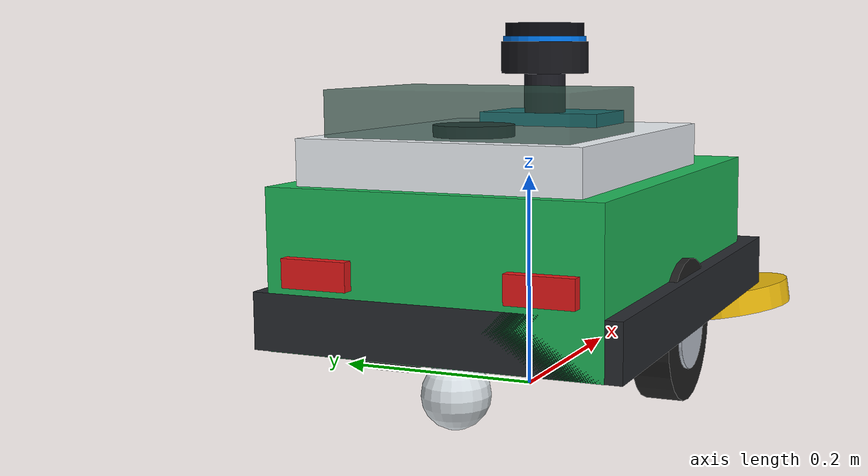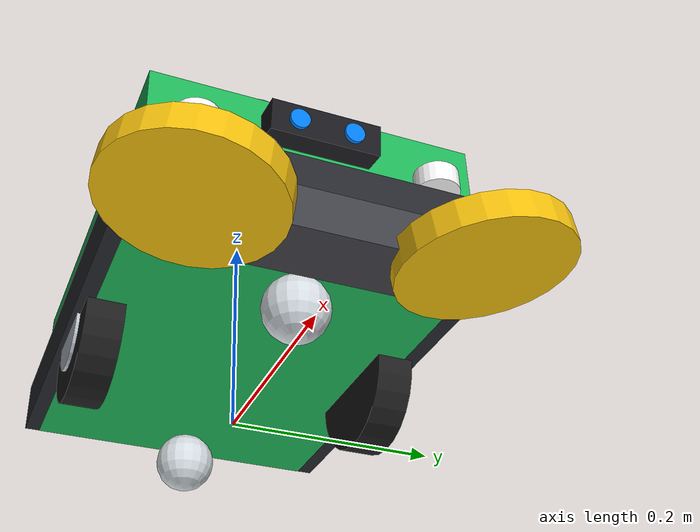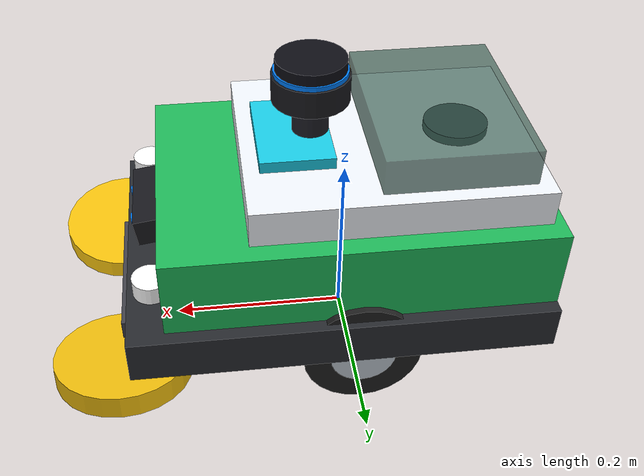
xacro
<?xml version="1.0"?>
<robot xmlns:xacro="http://www.ros.org/wiki/xacro" name="cleaner_robot">

  <!-- Dimensions & Physical Parameters                                 -->
  <xacro:property name="chassis_length" value="0.42"/>
  <xacro:property name="chassis_width" value="0.30"/>
  <xacro:property name="chassis_height" value="0.14"/>
  <xacro:property name="chassis_mass" value="6.0"/>

  <xacro:property name="wheel_radius" value="0.065"/>
  <xacro:property name="wheel_width" value="0.035"/>
  <xacro:property name="wheel_separation" value="0.28"/>
  <xacro:property name="wheel_mass" value="0.5"/>

  <xacro:property name="caster_radius" value="0.03"/>
  <xacro:property name="caster_mass" value="0.25"/>

  <!-- Inertia Macros -->
  <xacro:macro name="cylinder_inertia" params="m r h">
    <inertial>
      <mass value="${m}"/>
      <inertia ixx="${(m/12)*(3*r*r + h*h)}" ixy="0" ixz="0"
               iyy="${(m/12)*(3*r*r + h*h)}" iyz="0"
               izz="${(m/2)*(r*r)}"/>
    </inertial>
  </xacro:macro>

  <xacro:macro name="box_inertia" params="m x y z">
    <inertial>
      <mass value="${m}"/>
      <inertia ixx="${(m/12)*(y*y + z*z)}" ixy="0" ixz="0"
               iyy="${(m/12)*(x*x + z*z)}" iyz="0"
               izz="${(m/12)*(x*x + y*y)}"/>
    </inertial>
  </xacro:macro>

  <xacro:macro name="sphere_inertia" params="m r">
    <inertial>
      <mass value="${m}"/>
      <inertia ixx="${(2/5)*m*r*r}" ixy="0" ixz="0"
               iyy="${(2/5)*m*r*r}" iyz="0"
               izz="${(2/5)*m*r*r}"/>
    </inertial>
  </xacro:macro>

  <!-- Base Footprint (Ground Projection)                               -->
  <link name="base_footprint"/>

  <joint name="base_footprint_joint" type="fixed">
    <parent link="base_footprint"/>
    <child link="base_link"/>
    <origin xyz="0 0 ${wheel_radius}" rpy="0 0 0"/>
  </joint>

  <!-- Main Cleaner Robot Chassis                                       -->
  <link name="base_link">
    <!-- Main Sweeper Body (High-visibility Emerald / Municipal Green) -->
    <visual>
      <origin xyz="0 0 ${chassis_height/2}" rpy="0 0 0"/>
      <geometry>
        <box size="${chassis_length} ${chassis_width} ${chassis_height}"/>
      </geometry>
      <material name="municipal_green">
        <color rgba="0.12 0.72 0.35 1.0"/>
      </material>
    </visual>
    <collision>
      <origin xyz="0 0 ${chassis_height/2}" rpy="0 0 0"/>
      <geometry>
        <box size="${chassis_length} ${chassis_width} ${chassis_height}"/>
      </geometry>
    </collision>

    <!-- Lower Bumper & Brush Skirt (Carbon Dark Grey) -->
    <visual>
      <origin xyz="0.02 0 ${chassis_height*0.18}" rpy="0 0 0"/>
      <geometry>
        <box size="${chassis_length + 0.04} ${chassis_width + 0.03} 0.05"/>
      </geometry>
      <material name="bumper_grey">
        <color rgba="0.15 0.16 0.18 1.0"/>
      </material>
    </visual>
    <collision>
      <origin xyz="0.02 0 ${chassis_height*0.18}" rpy="0 0 0"/>
      <geometry>
        <box size="${chassis_length + 0.04} ${chassis_width + 0.03} 0.05"/>
      </geometry>
    </collision>

    <!-- Aerodynamic Top Cowl (Gloss Pearl White) -->
    <visual>
      <origin xyz="-0.04 0 ${chassis_height + 0.02}" rpy="0 0 0"/>
      <geometry>
        <box size="${chassis_length*0.75} ${chassis_width*0.85} 0.04"/>
      </geometry>
      <material name="pearl_white">
        <color rgba="0.94 0.96 0.98 1.0"/>
      </material>
    </visual>

    <!-- Transparent Waste Hopper / Dustbin (Smoky Tinted Acrylic) -->
    <visual>
      <origin xyz="-0.10 0 ${chassis_height + 0.055}" rpy="0 0 0"/>
      <geometry>
        <box size="0.16 0.22 0.05"/>
      </geometry>
      <material name="tinted_acrylic">
        <color rgba="0.2 0.35 0.3 0.7"/>
      </material>
    </visual>

    <!-- Central Front Suction Intake Mouth -->
    <visual>
      <origin xyz="${chassis_length/2 + 0.02} 0 -0.01" rpy="0 0 0"/>
      <geometry>
        <box size="0.06 0.18 0.04"/>
      </geometry>
      <material name="intake_metal">
        <color rgba="0.25 0.25 0.28 1.0"/>
      </material>
    </visual>

    <!-- Front Left Rotating Disc Sweeper Brush Visual -->
    <visual>
      <origin xyz="${chassis_length/2 + 0.05} 0.12 -0.02" rpy="0.15 0 0"/>
      <geometry>
        <cylinder radius="0.075" length="0.025"/>
      </geometry>
      <material name="brush_yellow">
        <color rgba="0.95 0.75 0.05 1.0"/>
      </material>
    </visual>

    <!-- Front Right Rotating Disc Sweeper Brush Visual -->
    <visual>
      <origin xyz="${chassis_length/2 + 0.05} -0.12 -0.02" rpy="-0.15 0 0"/>
      <geometry>
        <cylinder radius="0.075" length="0.025"/>
      </geometry>
      <material name="brush_yellow">
        <color rgba="0.95 0.75 0.05 1.0"/>
      </material>
    </visual>

    <!-- Twin LED Headlights (Bright White) -->
    <visual>
      <origin xyz="${chassis_length/2 + 0.01} 0.11 ${chassis_height*0.6}" rpy="0 0 0"/>
      <geometry><cylinder radius="0.02" length="0.02"/></geometry>
      <material name="led_white"><color rgba="1.0 1.0 1.0 1.0"/></material>
    </visual>
    <visual>
      <origin xyz="${chassis_length/2 + 0.01} -0.11 ${chassis_height*0.6}" rpy="0 0 0"/>
      <geometry><cylinder radius="0.02" length="0.02"/></geometry>
      <material name="led_white"><color rgba="1.0 1.0 1.0 1.0"/></material>
    </visual>

    <!-- Rear Brake / Hazard Taillights (Vivid Red) -->
    <visual>
      <origin xyz="${-chassis_length/2 - 0.005} 0.10 ${chassis_height*0.5}" rpy="0 0 0"/>
      <geometry><box size="0.01 0.06 0.025"/></geometry>
      <material name="tail_red"><color rgba="0.9 0.1 0.1 1.0"/></material>
    </visual>
    <visual>
      <origin xyz="${-chassis_length/2 - 0.005} -0.10 ${chassis_height*0.5}" rpy="0 0 0"/>
      <geometry><box size="0.01 0.06 0.025"/></geometry>
      <material name="tail_red"><color rgba="0.9 0.1 0.1 1.0"/></material>
    </visual>

    <!-- Top Digital Status Screen / Beacon Base -->
    <visual>
      <origin xyz="0.06 0 ${chassis_height + 0.045}" rpy="0 0 0"/>
      <geometry><box size="0.08 0.12 0.015"/></geometry>
      <material name="screen_cyan"><color rgba="0.1 0.8 0.9 1.0"/></material>
    </visual>

    <xacro:box_inertia m="${chassis_mass}" x="${chassis_length}" y="${chassis_width}" z="${chassis_height}"/>
  </link>

  <gazebo reference="base_link">
    <visual>
      <material>
        <ambient>0.12 0.72 0.35 1.0</ambient>
        <diffuse>0.15 0.78 0.38 1.0</diffuse>
        <specular>0.4 0.4 0.4 1.0</specular>
      </material>
    </visual>
  </gazebo>

  <!-- Left Drive Wheel                                                 -->
  <link name="left_wheel">
    <visual>
      <origin xyz="0 0 0" rpy="${pi/2} 0 0"/>
      <geometry>
        <cylinder radius="${wheel_radius}" length="${wheel_width}"/>
      </geometry>
      <material name="tire_rubber">
        <color rgba="0.12 0.12 0.12 1.0"/>
      </material>
    </visual>
    <visual>
      <origin xyz="0 0.018 0" rpy="${pi/2} 0 0"/>
      <geometry>
        <cylinder radius="${wheel_radius*0.55}" length="0.005"/>
      </geometry>
      <material name="hub_silver">
        <color rgba="0.75 0.78 0.82 1.0"/>
      </material>
    </visual>
    <collision>
      <origin xyz="0 0 0" rpy="${pi/2} 0 0"/>
      <geometry>
        <cylinder radius="${wheel_radius}" length="${wheel_width}"/>
      </geometry>
    </collision>
    <xacro:cylinder_inertia m="${wheel_mass}" r="${wheel_radius}" h="${wheel_width}"/>
  </link>

  <joint name="left_wheel_joint" type="continuous">
    <parent link="base_link"/>
    <child link="left_wheel"/>
    <origin xyz="0 ${wheel_separation/2} 0" rpy="0 0 0"/>
    <axis xyz="0 1 0"/>
  </joint>

  <gazebo reference="left_wheel">
    <mu1>1.5</mu1>
    <mu2>1.5</mu2>
    <visual>
      <material>
        <ambient>0.12 0.12 0.12 1.0</ambient>
        <diffuse>0.18 0.18 0.18 1.0</diffuse>
      </material>
    </visual>
  </gazebo>

  <!-- Right Drive Wheel                                                -->
  <link name="right_wheel">
    <visual>
      <origin xyz="0 0 0" rpy="${pi/2} 0 0"/>
      <geometry>
        <cylinder radius="${wheel_radius}" length="${wheel_width}"/>
      </geometry>
      <material name="tire_rubber">
        <color rgba="0.12 0.12 0.12 1.0"/>
      </material>
    </visual>
    <visual>
      <origin xyz="0 -0.018 0" rpy="${pi/2} 0 0"/>
      <geometry>
        <cylinder radius="${wheel_radius*0.55}" length="0.005"/>
      </geometry>
      <material name="hub_silver">
        <color rgba="0.75 0.78 0.82 1.0"/>
      </material>
    </visual>
    <collision>
      <origin xyz="0 0 0" rpy="${pi/2} 0 0"/>
      <geometry>
        <cylinder radius="${wheel_radius}" length="${wheel_width}"/>
      </geometry>
    </collision>
    <xacro:cylinder_inertia m="${wheel_mass}" r="${wheel_radius}" h="${wheel_width}"/>
  </link>

  <joint name="right_wheel_joint" type="continuous">
    <parent link="base_link"/>
    <child link="right_wheel"/>
    <origin xyz="0 ${-wheel_separation/2} 0" rpy="0 0 0"/>
    <axis xyz="0 1 0"/>
  </joint>

  <gazebo reference="right_wheel">
    <mu1>1.5</mu1>
    <mu2>1.5</mu2>
    <visual>
      <material>
        <ambient>0.12 0.12 0.12 1.0</ambient>
        <diffuse>0.18 0.18 0.18 1.0</diffuse>
      </material>
    </visual>
  </gazebo>

  <!-- Front Passive Caster Wheel                                       -->
  <link name="caster_wheel">
    <visual>
      <origin xyz="0 0 0" rpy="0 0 0"/>
      <geometry><sphere radius="${caster_radius}"/></geometry>
      <material name="caster_chrome"><color rgba="0.85 0.88 0.90 1.0"/></material>
    </visual>
    <collision>
      <origin xyz="0 0 0" rpy="0 0 0"/>
      <geometry><sphere radius="${caster_radius}"/></geometry>
    </collision>
    <xacro:sphere_inertia m="${caster_mass}" r="${caster_radius}"/>
  </link>

  <joint name="caster_wheel_joint" type="fixed">
    <parent link="base_link"/>
    <child link="caster_wheel"/>
    <origin xyz="${chassis_length/2 - 0.05} 0 ${-wheel_radius + caster_radius}" rpy="0 0 0"/>
  </joint>

  <gazebo reference="caster_wheel">
    <mu1>0.001</mu1>
    <mu2>0.001</mu2>
    <visual>
      <material>
        <ambient>0.85 0.88 0.90 1.0</ambient>
        <diffuse>0.90 0.92 0.95 1.0</diffuse>
      </material>
    </visual>
  </gazebo>

  <!-- Rear Stabilizer Caster Ball                                      -->
  <link name="rear_caster">
    <visual>
      <origin xyz="0 0 0" rpy="0 0 0"/>
      <geometry><sphere radius="${caster_radius}"/></geometry>
      <material name="caster_chrome"><color rgba="0.85 0.88 0.90 1.0"/></material>
    </visual>
    <collision>
      <origin xyz="0 0 0" rpy="0 0 0"/>
      <geometry><sphere radius="${caster_radius}"/></geometry>
    </collision>
    <xacro:sphere_inertia m="${caster_mass}" r="${caster_radius}"/>
  </link>

  <joint name="rear_caster_joint" type="fixed">
    <parent link="base_link"/>
    <child link="rear_caster"/>
    <origin xyz="${-chassis_length/2 + 0.05} 0 ${-wheel_radius + caster_radius}" rpy="0 0 0"/>
  </joint>

  <gazebo reference="rear_caster">
    <mu1>0.001</mu1>
    <mu2>0.001</mu2>
  </gazebo>

  <!-- 2D Planar LiDAR Sensor Tower (Elevated Mast)                     -->
  <link name="laser_frame">
    <!-- Slim Elevation Mast -->
    <visual>
      <origin xyz="0 0 -0.05" rpy="0 0 0"/>
      <geometry><cylinder radius="0.02" length="0.10"/></geometry>
      <material name="mast_dark"><color rgba="0.12 0.12 0.15 1.0"/></material>
    </visual>
    <!-- Turret Housing Base -->
    <visual>
      <origin xyz="0 0 -0.005" rpy="0 0 0"/>
      <geometry><cylinder radius="0.042" length="0.03"/></geometry>
      <material name="tower_dark"><color rgba="0.1 0.1 0.12 1.0"/></material>
    </visual>
    <!-- Spinning Scanner Cap -->
    <visual>
      <origin xyz="0 0 0.015" rpy="0 0 0"/>
      <geometry><cylinder radius="0.038" length="0.025"/></geometry>
      <material name="lidar_turret"><color rgba="0.05 0.05 0.08 1.0"/></material>
    </visual>
    <!-- Blue Optical Strip Ring -->
    <visual>
      <origin xyz="0 0 0.012" rpy="0 0 0"/>
      <geometry><cylinder radius="0.040" length="0.006"/></geometry>
      <material name="optical_blue"><color rgba="0.0 0.5 1.0 0.9"/></material>
    </visual>
    <collision>
      <origin xyz="0 0 0" rpy="0 0 0"/>
      <geometry><cylinder radius="0.042" length="0.05"/></geometry>
    </collision>
    <xacro:cylinder_inertia m="0.15" r="0.042" h="0.05"/>
  </link>

  <joint name="laser_joint" type="fixed">
    <parent link="base_link"/>
    <child link="laser_frame"/>
    <!-- Elevated 11cm above chassis for 100% unobstructed horizontal 360-degree scan -->
    <origin xyz="0.04 0 ${chassis_height + 0.11}" rpy="0 0 0"/>
  </joint>

  <gazebo reference="laser_frame">
    <visual>
      <material>
        <ambient>0.05 0.05 0.08 1.0</ambient>
        <diffuse>0.10 0.10 0.15 1.0</diffuse>
      </material>
    </visual>
    <sensor name="planar_lidar" type="gpu_lidar">
      <pose>0 0 0.015 0 0 0</pose>
      <topic>/scan</topic>
      <visualize>false</visualize>
      <update_rate>15</update_rate>
      <ray>
        <scan>
          <horizontal>
            <samples>360</samples>
            <resolution>1</resolution>
            <min_angle>-3.14159265</min_angle>
            <max_angle>3.14159265</max_angle>
          </horizontal>
        </scan>
        <range>
          <min>0.25</min>
          <max>12.0</max>
          <resolution>0.01</resolution>
        </range>
      </ray>
      <frame_id>laser_frame</frame_id>
    </sensor>
  </gazebo>

  <!-- Forward RGB Camera Sensor (AI Trash Vision)                      -->
  <link name="camera_link">
    <visual>
      <origin xyz="0 0 0" rpy="0 0 0"/>
      <geometry><box size="0.03 0.10 0.03"/></geometry>
      <material name="camera_dark"><color rgba="0.1 0.1 0.12 1.0"/></material>
    </visual>
    <!-- Twin Lens Visuals -->
    <visual>
      <origin xyz="0.016 0.025 0" rpy="0 1.5708 0"/>
      <geometry><cylinder radius="0.009" length="0.005"/></geometry>
      <material name="optical_blue"><color rgba="0.0 0.5 1.0 1.0"/></material>
    </visual>
    <visual>
      <origin xyz="0.016 -0.025 0" rpy="0 1.5708 0"/>
      <geometry><cylinder radius="0.009" length="0.005"/></geometry>
      <material name="optical_blue"><color rgba="0.0 0.5 1.0 1.0"/></material>
    </visual>
    <collision>
      <origin xyz="0 0 0" rpy="0 0 0"/>
      <geometry><box size="0.03 0.10 0.03"/></geometry>
    </collision>
    <xacro:box_inertia m="0.10" x="0.03" y="0.10" z="0.03"/>
  </link>

  <joint name="camera_joint" type="fixed">
    <parent link="base_link"/>
    <child link="camera_link"/>
    <!-- Angled downward by ~8.5 deg (0.15 rad) to optimize ground litter detection -->
    <origin xyz="${chassis_length/2 + 0.01} 0 ${chassis_height*0.75}" rpy="0 0.15 0"/>
  </joint>

  <!-- Optical frame for ROS camera conventions -->
  <link name="camera_optical_frame"/>
  <joint name="camera_optical_joint" type="fixed">
    <parent link="camera_link"/>
    <child link="camera_optical_frame"/>
    <origin xyz="0 0 0" rpy="-1.57079632679 0 -1.57079632679"/>
  </joint>

  <gazebo reference="camera_link">
    <visual>
      <material>
        <ambient>0.1 0.1 0.12 1.0</ambient>
        <diffuse>0.15 0.15 0.18 1.0</diffuse>
      </material>
    </visual>
    <sensor name="camera_sensor" type="camera">
      <always_on>true</always_on>
      <update_rate>20</update_rate>
      <visualize>false</visualize>
      <topic>/camera/image_raw</topic>
      <camera>
        <horizontal_fov>1.3962634</horizontal_fov>
        <image>
          <width>640</width>
          <height>480</height>
          <format>R8G8B8</format>
        </image>
        <clip>
          <near>0.05</near>
          <far>20.0</far>
        </clip>
      </camera>
      <frame_id>camera_optical_frame</frame_id>
    </sensor>
  </gazebo>

  <!-- GPS / GNSS Receiver Antenna Module                                -->
  <link name="gps_link">
    <visual>
      <origin xyz="0 0 0" rpy="0 0 0"/>
      <geometry>
        <cylinder radius="0.035" length="0.02"/>
      </geometry>
      <material name="gps_dark">
        <color rgba="0.12 0.12 0.15 1.0"/>
      </material>
    </visual>
  </link>

  <joint name="gps_joint" type="fixed">
    <parent link="base_link"/>
    <child link="gps_link"/>
    <origin xyz="-0.12 0 ${chassis_height + 0.04}" rpy="0 0 0"/>
  </joint>

  <gazebo reference="gps_link">
    <sensor name="navsat_sensor" type="navsat">
      <always_on>true</always_on>
      <update_rate>10</update_rate>
      <topic>/gps/fix</topic>
      <navsat>
        <position_sensing>
          <horizontal>
            <noise type="gaussian">
              <mean>0.0</mean>
              <stddev>0.000001</stddev>
            </noise>
          </horizontal>
          <vertical>
            <noise type="gaussian">
              <mean>0.0</mean>
              <stddev>0.000001</stddev>
            </noise>
          </vertical>
        </position_sensing>
      </navsat>
    </sensor>
  </gazebo>

  <!-- Differential Drive Plugin (Gazebo Harmonic)                       -->
  <gazebo>
    <plugin filename="gz-sim-diff-drive-system" name="gz::sim::systems::DiffDrive">
      <left_joint>left_wheel_joint</left_joint>
      <right_joint>right_wheel_joint</right_joint>
      <wheel_separation>${wheel_separation}</wheel_separation>
      <wheel_radius>${wheel_radius}</wheel_radius>
      <max_linear_acceleration>1.6</max_linear_acceleration>
      <min_linear_acceleration>-1.6</min_linear_acceleration>
      <max_angular_acceleration>3.2</max_angular_acceleration>
      <min_angular_acceleration>-3.2</min_angular_acceleration>
      <max_linear_velocity>0.85</max_linear_velocity>
      <min_linear_velocity>-0.85</min_linear_velocity>
      <max_angular_velocity>2.2</max_angular_velocity>
      <min_angular_velocity>-2.2</min_angular_velocity>
      <max_torque>35.0</max_torque>
      <topic>/cmd_vel</topic>
      <odom_topic>/odom</odom_topic>
      <frame_id>odom</frame_id>
      <child_frame_id>base_footprint</child_frame_id>
      <odom_publisher_frequency>30</odom_publisher_frequency>
      <tf_topic>/tf</tf_topic>
    </plugin>

    <plugin filename="gz-sim-joint-state-publisher-system" name="gz::sim::systems::JointStatePublisher">
      <topic>/joint_states</topic>
    </plugin>
  </gazebo>

</robot>
